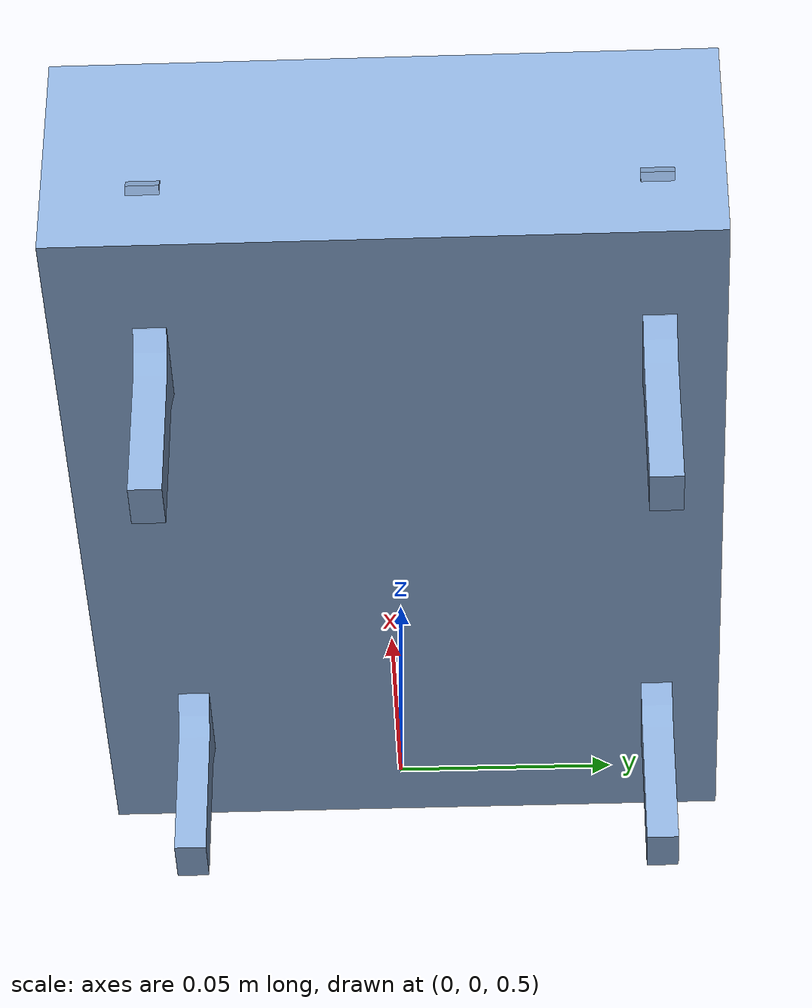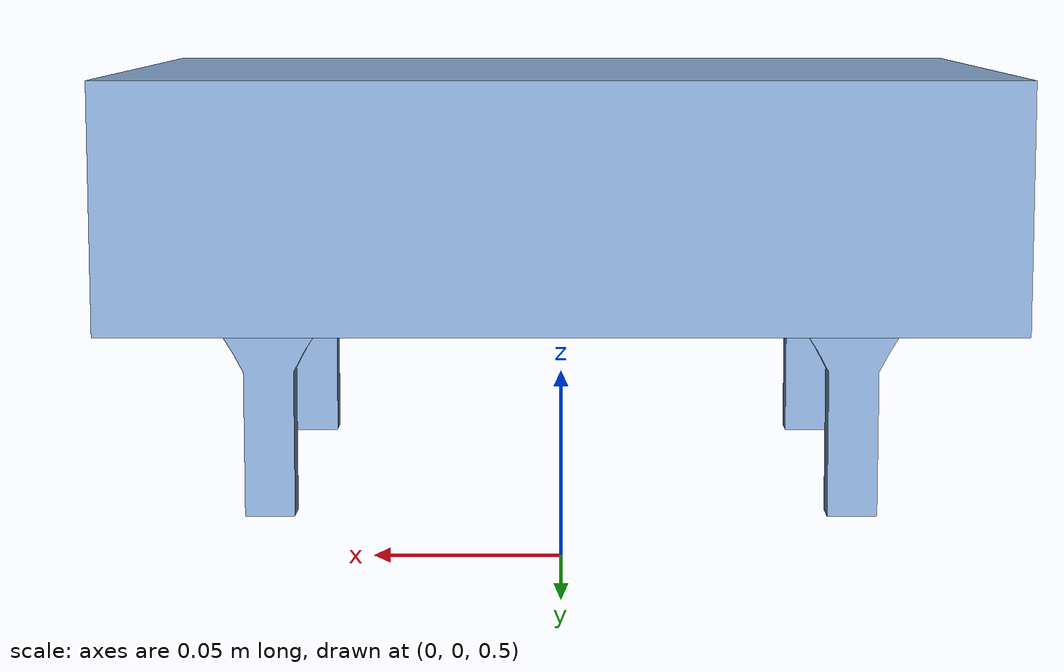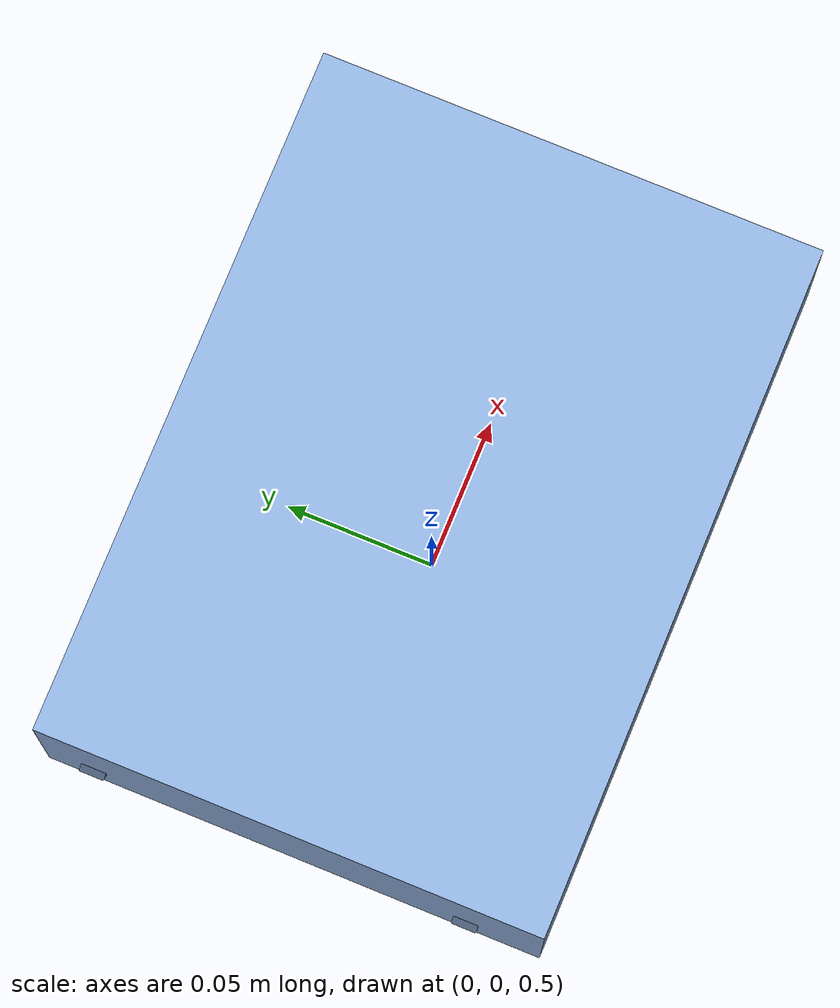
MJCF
<?xml version="1.0" encoding="utf-8"?>
<mujoco model="mini_whegs">
  <compiler angle="radian" coordinate="local" meshdir="meshes" autolimits="true"/>
  <option timestep="0.002" integrator="implicitfast"/>
  <default>
    <joint damping="0.1" armature="0.01"/>
    <geom contype="0" conaffinity="1" friction="1.0 0.005 0.0001"/>
  </default>
  <asset>
    <mesh name="catalog_chassis_quadruped_body__height-60__hip_spacing_x-140__hip_spacing_y-120__length-220__width-160" file="catalog_chassis_quadruped_body__height-60__hip_spacing_x-140__hip_spacing_y-120__length-220__width-160.stl" scale="0.001 0.001 0.001"/>
    <mesh name="catalog_wheels_wheg__hub_radius-10__hub_thickness-8__spoke_length-45__spoke_thickness-8__spoke_width-12" file="catalog_wheels_wheg__hub_radius-10__hub_thickness-8__spoke_length-45__spoke_thickness-8__spoke_width-12.stl" scale="0.001 0.001 0.001"/>
  </asset>
  <worldbody>
    <geom name="ground" type="plane" size="10 10 0.1" contype="1" conaffinity="1" rgba="0.85 0.85 0.85 1"/>
    <body name="base" pos="0 0 0.600">
      <freejoint name="root"/>
      <inertial pos="0.000000 0.000000 0.000000" mass="0.433295" diaginertia="1.054351e-3 1.877612e-3 2.671986e-3"/>
      <geom name="base_geom" type="mesh" mesh="catalog_chassis_quadruped_body__height-60__hip_spacing_x-140__hip_spacing_y-120__length-220__width-160" mass="0" rgba="0.55 0.68 0.85 1"/>
      <body name="FL_wheg" pos="0.070000 0.060000 -0.030000">
        <joint name="FL_WHEG_drive" type="hinge" limited="false" damping="0.001" armature="0.0001" axis="0.000000 1.000000 0.000000" pos="0 0 0"/>
        <inertial pos="0.000000 0.000000 0.000000" mass="0.016513" diaginertia="3.901244e-6 7.802487e-6 3.901244e-6"/>
        <geom name="FL_wheg_geom" type="mesh" mesh="catalog_wheels_wheg__hub_radius-10__hub_thickness-8__spoke_length-45__spoke_thickness-8__spoke_width-12" mass="0" rgba="0.55 0.68 0.85 1"/>
      </body>
      <body name="FR_wheg" pos="0.070000 -0.060000 -0.030000">
        <joint name="FR_WHEG_drive" type="hinge" limited="false" damping="0.001" armature="0.0001" axis="0.000000 1.000000 0.000000" pos="0 0 0"/>
        <inertial pos="0.000000 0.000000 0.000000" mass="0.016513" diaginertia="3.901244e-6 7.802487e-6 3.901244e-6"/>
        <geom name="FR_wheg_geom" type="mesh" mesh="catalog_wheels_wheg__hub_radius-10__hub_thickness-8__spoke_length-45__spoke_thickness-8__spoke_width-12" mass="0" rgba="0.55 0.68 0.85 1"/>
      </body>
      <body name="RL_wheg" pos="-0.070000 0.060000 -0.030000">
        <joint name="RL_WHEG_drive" type="hinge" limited="false" damping="0.001" armature="0.0001" axis="0.000000 1.000000 0.000000" pos="0 0 0"/>
        <inertial pos="0.000000 0.000000 0.000000" mass="0.016513" diaginertia="3.901244e-6 7.802487e-6 3.901244e-6"/>
        <geom name="RL_wheg_geom" type="mesh" mesh="catalog_wheels_wheg__hub_radius-10__hub_thickness-8__spoke_length-45__spoke_thickness-8__spoke_width-12" mass="0" rgba="0.55 0.68 0.85 1"/>
      </body>
      <body name="RR_wheg" pos="-0.070000 -0.060000 -0.030000">
        <joint name="RR_WHEG_drive" type="hinge" limited="false" damping="0.001" armature="0.0001" axis="0.000000 1.000000 0.000000" pos="0 0 0"/>
        <inertial pos="0.000000 0.000000 0.000000" mass="0.016513" diaginertia="3.901244e-6 7.802487e-6 3.901244e-6"/>
        <geom name="RR_wheg_geom" type="mesh" mesh="catalog_wheels_wheg__hub_radius-10__hub_thickness-8__spoke_length-45__spoke_thickness-8__spoke_width-12" mass="0" rgba="0.55 0.68 0.85 1"/>
      </body>
    </body>
  </worldbody>
  <actuator>
    <motor name="FL_WHEG_drive" joint="FL_WHEG_drive" ctrlrange="-1.500 1.500" gear="1"/>
    <motor name="FR_WHEG_drive" joint="FR_WHEG_drive" ctrlrange="-1.500 1.500" gear="1"/>
    <motor name="RL_WHEG_drive" joint="RL_WHEG_drive" ctrlrange="-1.500 1.500" gear="1"/>
    <motor name="RR_WHEG_drive" joint="RR_WHEG_drive" ctrlrange="-1.500 1.500" gear="1"/>
  </actuator>
</mujoco>
